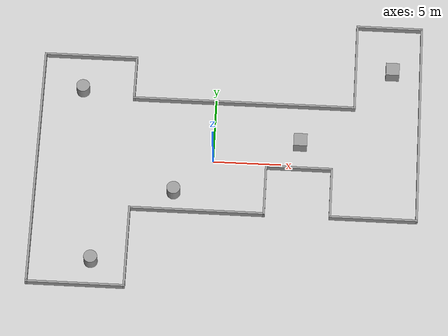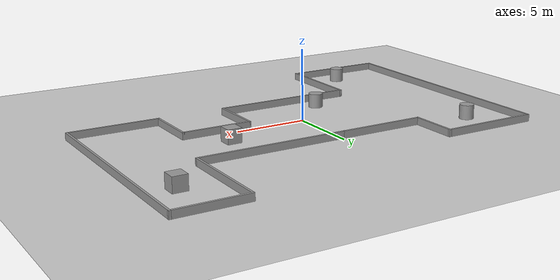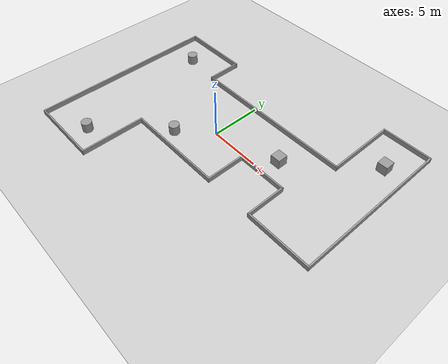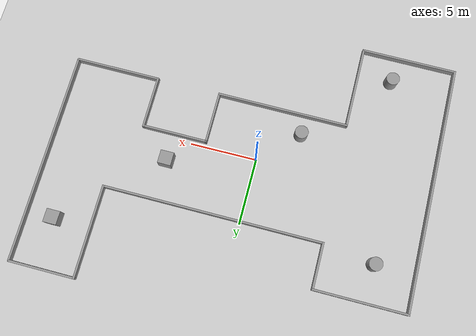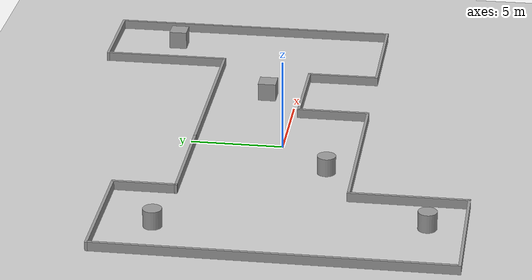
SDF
<sdf version="1.7">
 <world name="default">
  <light name="sun" type="directional">
   <pose>0 0 10 0 -0 0</pose>
   <diffuse>0.8 0.8 0.8 1</diffuse>
   <specular>0.2 0.2 0.2 1</specular>
   <attenuation>
    <range>1000</range>
    <constant>0.9</constant>
    <linear>0.01</linear>
    <quadratic>0.001</quadratic>
   </attenuation>
   <direction>-0.5 0.1 -0.9</direction>
   <spot><inner_angle>0</inner_angle><outer_angle>0</outer_angle><falloff>0</falloff></spot>
  </light>
  <model name="ground_plane">
   <static>1</static>
   <link name="link">
    <collision name="collision">
     <geometry><plane><normal>0 0 1</normal><size>100 100</size></plane></geometry>
     <surface>
      <contact><collide_bitmask>65535</collide_bitmask></contact>
      <friction><ode><mu>100</mu><mu2>50</mu2></ode></friction>
     </surface>
    </collision>
    <visual name="visual">
     <cast_shadows>0</cast_shadows>
     <geometry><plane><normal>0 0 1</normal><size>100 100</size></plane></geometry>
     <material>
      <script><uri>file://media/materials/scripts/gazebo.material</uri><name>Gazebo/Grey</name></script>
     </material>
    </visual>
   </link>
  </model>
  <gravity>0 0 -9.8</gravity>
  <magnetic_field>6e-06 2.3e-05 -4.2e-05</magnetic_field>
  <atmosphere type="adiabatic"/>
  <physics type="ode">
   <max_step_size>0.001</max_step_size>
   <real_time_factor>1</real_time_factor>
   <real_time_update_rate>1000</real_time_update_rate>
  </physics>
  <scene><ambient>0.4 0.4 0.4 1</ambient><background>0.7 0.7 0.7 1</background><shadows>1</shadows></scene>
  <audio><device>default</device></audio>
  <spherical_coordinates>
   <surface_model>EARTH_WGS84</surface_model>
   <latitude_deg>0</latitude_deg>
   <longitude_deg>0</longitude_deg>
   <elevation>0</elevation>
   <heading_deg>0</heading_deg>
  </spherical_coordinates>
  <model name="simple_world">
   <pose>1.055 0.58 0 0 -0 0</pose>
   <link name="Wall_0">
    <collision name="Wall_0_Collision">
     <geometry><box><size>10 0.15 0.5</size></box></geometry>
     <pose>0 0 0.25 0 -0 0</pose>
    </collision>
    <visual name="Wall_0_Visual">
     <pose>0 0 0.25 0 -0 0</pose>
     <geometry><box><size>10 0.15 0.5</size></box></geometry>
     <material>
      <script><uri>file://media/materials/scripts/gazebo.material</uri><name>Gazebo/Grey</name></script>
      <ambient>1 1 1 1</ambient>
     </material>
     <meta><layer>0</layer></meta>
    </visual>
    <pose>-2.05 -4.8 0 0 -0 0</pose>
   </link>
   <link name="Wall_1">
    <collision name="Wall_1_Collision">
     <geometry><box><size>4 0.15 0.5</size></box></geometry>
     <pose>0 0 0.25 0 -0 0</pose>
    </collision>
    <visual name="Wall_1_Visual">
     <pose>0 0 0.25 0 -0 0</pose>
     <geometry><box><size>4 0.15 0.5</size></box></geometry>
     <material>
      <script><uri>file://media/materials/scripts/gazebo.material</uri><name>Gazebo/Grey</name></script>
      <ambient>1 1 1 1</ambient>
     </material>
     <meta><layer>0</layer></meta>
    </visual>
    <pose>2.875 -2.875 0 0 -0 1.5708</pose>
   </link>
   <link name="Wall_10">
    <collision name="Wall_10_Collision">
     <geometry><box><size>6.25 0.15 0.5</size></box></geometry>
     <pose>0 0 0.25 0 -0 0</pose>
    </collision>
    <visual name="Wall_10_Visual">
     <pose>0 0 0.25 0 -0 0</pose>
     <geometry><box><size>6.25 0.15 0.5</size></box></geometry>
     <material>
      <script><uri>file://media/materials/scripts/gazebo.material</uri><name>Gazebo/Grey</name></script>
      <ambient>1 1 1 1</ambient>
     </material>
     <meta><layer>0</layer></meta>
    </visual>
    <pose>-4.175 4.2 0 0 -0 3.14159</pose>
   </link>
   <link name="Wall_11">
    <collision name="Wall_11_Collision">
     <geometry><box><size>3.5 0.15 0.5</size></box></geometry>
     <pose>0 0 0.25 0 -0 0</pose>
    </collision>
    <visual name="Wall_11_Visual">
     <pose>0 0 0.25 0 -0 0</pose>
     <geometry><box><size>3.5 0.15 0.5</size></box></geometry>
     <material>
      <script><uri>file://media/materials/scripts/gazebo.material</uri><name>Gazebo/Grey</name></script>
      <ambient>1 1 1 1</ambient>
     </material>
     <meta><layer>0</layer></meta>
    </visual>
    <pose>-7.225 5.875 0 0 -0 1.5708</pose>
   </link>
   <link name="Wall_12">
    <collision name="Wall_12_Collision">
     <geometry><box><size>7 0.15 0.5</size></box></geometry>
     <pose>0 0 0.25 0 -0 0</pose>
    </collision>
    <visual name="Wall_12_Visual">
     <pose>0 0 0.25 0 -0 0</pose>
     <geometry><box><size>7 0.15 0.5</size></box></geometry>
     <material>
      <script><uri>file://media/materials/scripts/gazebo.material</uri><name>Gazebo/Grey</name></script>
      <ambient>1 1 1 1</ambient>
     </material>
     <meta><layer>0</layer></meta>
    </visual>
    <pose>-10.65 7.55 0 0 -0 3.14159</pose>
   </link>
   <link name="Wall_13">
    <collision name="Wall_13_Collision">
     <geometry><box><size>18.75 0.15 0.5</size></box></geometry>
     <pose>0 0 0.25 0 -0 0</pose>
    </collision>
    <visual name="Wall_13_Visual">
     <pose>0 0 0.25 0 -0 0</pose>
     <geometry><box><size>18.75 0.15 0.5</size></box></geometry>
     <material>
      <script><uri>file://media/materials/scripts/gazebo.material</uri><name>Gazebo/Grey</name></script>
      <ambient>1 1 1 1</ambient>
     </material>
     <meta><layer>0</layer></meta>
    </visual>
    <pose>-14.075 -1.75 0 0 -0 -1.5708</pose>
   </link>
   <link name="Wall_14">
    <collision name="Wall_14_Collision">
     <geometry><box><size>7.25 0.15 0.5</size></box></geometry>
     <pose>0 0 0.25 0 -0 0</pose>
    </collision>
    <visual name="Wall_14_Visual">
     <pose>0 0 0.25 0 -0 0</pose>
     <geometry><box><size>7.25 0.15 0.5</size></box></geometry>
     <material>
      <script><uri>file://media/materials/scripts/gazebo.material</uri><name>Gazebo/Grey</name></script>
      <ambient>1 1 1 1</ambient>
     </material>
     <meta><layer>0</layer></meta>
    </visual>
    <pose>-10.525 -11.05 0 0 -0 0</pose>
   </link>
   <link name="Wall_15">
    <collision name="Wall_15_Collision">
     <geometry><box><size>6.4 0.15 0.5</size></box></geometry>
     <pose>0 0 0.25 0 -0 0</pose>
    </collision>
    <visual name="Wall_15_Visual">
     <pose>0 0 0.25 0 -0 0</pose>
     <geometry><box><size>6.4 0.15 0.5</size></box></geometry>
     <material>
      <script><uri>file://media/materials/scripts/gazebo.material</uri><name>Gazebo/Grey</name></script>
      <ambient>1 1 1 1</ambient>
     </material>
     <meta><layer>0</layer></meta>
    </visual>
    <pose>-6.975 -7.925 0 0 -0 1.5708</pose>
   </link>
   <link name="Wall_2">
    <collision name="Wall_2_Collision">
     <geometry><box><size>5 0.15 0.5</size></box></geometry>
     <pose>0 0 0.25 0 -0 0</pose>
    </collision>
    <visual name="Wall_2_Visual">
     <pose>0 0 0.25 0 -0 0</pose>
     <geometry><box><size>5 0.15 0.5</size></box></geometry>
     <material>
      <script><uri>file://media/materials/scripts/gazebo.material</uri><name>Gazebo/Grey</name></script>
      <ambient>1 1 1 1</ambient>
     </material>
     <meta><layer>0</layer></meta>
    </visual>
    <pose>5.3 -0.95 0 0 -0 0</pose>
   </link>
   <link name="Wall_3">
    <collision name="Wall_3_Collision">
     <geometry><box><size>4 0.15 0.5</size></box></geometry>
     <pose>0 0 0.25 0 -0 0</pose>
    </collision>
    <visual name="Wall_3_Visual">
     <pose>0 0 0.25 0 -0 0</pose>
     <geometry><box><size>4 0.15 0.5</size></box></geometry>
     <material>
      <script><uri>file://media/materials/scripts/gazebo.material</uri><name>Gazebo/Grey</name></script>
      <ambient>1 1 1 1</ambient>
     </material>
     <meta><layer>0</layer></meta>
    </visual>
    <pose>7.725 -2.875 0 0 -0 -1.5708</pose>
   </link>
   <link name="Wall_4">
    <collision name="Wall_4_Collision">
     <geometry><box><size>6.5 0.15 0.5</size></box></geometry>
     <pose>0 0 0.25 0 -0 0</pose>
    </collision>
    <visual name="Wall_4_Visual">
     <pose>0 0 0.25 0 -0 0</pose>
     <geometry><box><size>6.5 0.15 0.5</size></box></geometry>
     <material>
      <script><uri>file://media/materials/scripts/gazebo.material</uri><name>Gazebo/Grey</name></script>
      <ambient>1 1 1 1</ambient>
     </material>
     <meta><layer>0</layer></meta>
    </visual>
    <pose>10.9 -4.8 0 0 -0 0</pose>
   </link>
   <link name="Wall_5">
    <collision name="Wall_5_Collision">
     <geometry><box><size>16 0.15 0.5</size></box></geometry>
     <pose>0 0 0.25 0 -0 0</pose>
    </collision>
    <visual name="Wall_5_Visual">
     <pose>0 0 0.25 0 -0 0</pose>
     <geometry><box><size>16 0.15 0.5</size></box></geometry>
     <material>
      <script><uri>file://media/materials/scripts/gazebo.material</uri><name>Gazebo/Grey</name></script>
      <ambient>1 1 1 1</ambient>
     </material>
     <meta><layer>0</layer></meta>
    </visual>
    <pose>14.075 3.125 0 0 -0 1.5708</pose>
   </link>
   <link name="Wall_7">
    <collision name="Wall_7_Collision">
     <geometry><box><size>5 0.15 0.5</size></box></geometry>
     <pose>0 0 0.25 0 -0 0</pose>
    </collision>
    <visual name="Wall_7_Visual">
     <pose>0 0 0.25 0 -0 0</pose>
     <geometry><box><size>5 0.15 0.5</size></box></geometry>
     <material>
      <script><uri>file://media/materials/scripts/gazebo.material</uri><name>Gazebo/Grey</name></script>
      <ambient>1 1 1 1</ambient>
     </material>
     <meta><layer>0</layer></meta>
    </visual>
    <pose>11.65 11.05 0 0 -0 3.14159</pose>
   </link>
   <link name="Wall_8">
    <collision name="Wall_8_Collision">
     <geometry><box><size>7 0.15 0.5</size></box></geometry>
     <pose>0 0 0.25 0 -0 0</pose>
    </collision>
    <visual name="Wall_8_Visual">
     <pose>0 0 0.25 0 -0 0</pose>
     <geometry><box><size>7 0.15 0.5</size></box></geometry>
     <material>
      <script><uri>file://media/materials/scripts/gazebo.material</uri><name>Gazebo/Grey</name></script>
      <ambient>1 1 1 1</ambient>
     </material>
     <meta><layer>0</layer></meta>
    </visual>
    <pose>9.225 7.625 0 0 -0 -1.5708</pose>
   </link>
   <link name="Wall_9">
    <collision name="Wall_9_Collision">
     <geometry><box><size>10.5 0.15 0.5</size></box></geometry>
     <pose>0 0 0.25 0 -0 0</pose>
    </collision>
    <visual name="Wall_9_Visual">
     <pose>0 0 0.25 0 -0 0</pose>
     <geometry><box><size>10.5 0.15 0.5</size></box></geometry>
     <material>
      <script><uri>file://media/materials/scripts/gazebo.material</uri><name>Gazebo/Grey</name></script>
      <ambient>1 1 1 1</ambient>
     </material>
     <meta><layer>0</layer></meta>
    </visual>
    <pose>4.05 4.2 0 0 -0 3.14159</pose>
   </link>
   <static>1</static>
  </model>
  <model name="unit_box">
   <pose>6.37075 1.69173 0.499995 0 1e-05 0</pose>
   <link name="link">
    <inertial>
     <mass>1</mass>
     <inertia>
      <ixx>0.166667</ixx>
      <ixy>0</ixy>
      <ixz>0</ixz>
      <iyy>0.166667</iyy>
      <iyz>0</iyz>
      <izz>0.166667</izz>
     </inertia>
    </inertial>
    <collision name="collision"><geometry><box><size>1 1 1</size></box></geometry></collision>
    <visual name="visual">
     <geometry><box><size>1 1 1</size></box></geometry>
     <material>
      <script><name>Gazebo/Grey</name><uri>file://media/materials/scripts/gazebo.material</uri></script>
     </material>
    </visual>
   </link>
  </model>
  <model name="unit_box_0">
   <pose>13.0149 7.89844 0.499995 -1e-05 -0 -0</pose>
   <link name="link">
    <inertial>
     <mass>1</mass>
     <inertia>
      <ixx>0.166667</ixx>
      <ixy>0</ixy>
      <ixz>0</ixz>
      <iyy>0.166667</iyy>
      <iyz>0</iyz>
      <izz>0.166667</izz>
     </inertia>
    </inertial>
    <collision name="collision"><geometry><box><size>1 1 1</size></box></geometry></collision>
    <visual name="visual">
     <geometry><box><size>1 1 1</size></box></geometry>
     <material>
      <script><name>Gazebo/Grey</name><uri>file://media/materials/scripts/gazebo.material</uri></script>
     </material>
    </visual>
   </link>
  </model>
  <model name="unit_cylinder">
   <pose>-9.99841 5.32862 0.499997 3e-06 4e-06 -0</pose>
   <link name="link">
    <inertial>
     <mass>1</mass>
     <inertia><ixx>0.145833</ixx><ixy>0</ixy><ixz>0</ixz><iyy>0.145833</iyy><iyz>0</iyz><izz>0.125</izz></inertia>
    </inertial>
    <collision name="collision">
     <geometry><cylinder><radius>0.5</radius><length>1</length></cylinder></geometry>
    </collision>
    <visual name="visual">
     <geometry><cylinder><radius>0.5</radius><length>1</length></cylinder></geometry>
     <material>
      <script><name>Gazebo/Grey</name><uri>file://media/materials/scripts/gazebo.material</uri></script>
     </material>
    </visual>
   </link>
  </model>
  <model name="unit_cylinder_0">
   <pose>-2.77202 -2.70592 0.499993 -3e-06 -4e-06 -0</pose>
   <link name="link">
    <inertial>
     <mass>1</mass>
     <inertia><ixx>0.145833</ixx><ixy>0</ixy><ixz>0</ixz><iyy>0.145833</iyy><iyz>0</iyz><izz>0.125</izz></inertia>
    </inertial>
    <collision name="collision">
     <geometry><cylinder><radius>0.5</radius><length>1</length></cylinder></geometry>
    </collision>
    <visual name="visual">
     <geometry><cylinder><radius>0.5</radius><length>1</length></cylinder></geometry>
     <material>
      <script><name>Gazebo/Grey</name><uri>file://media/materials/scripts/gazebo.material</uri></script>
     </material>
    </visual>
   </link>
  </model>
  <model name="unit_cylinder_1">
   <pose>-8.46123 -8.51795 0.499997 3e-06 4e-06 -0</pose>
   <link name="link">
    <inertial>
     <mass>1</mass>
     <inertia><ixx>0.145833</ixx><ixy>0</ixy><ixz>0</ixz><iyy>0.145833</iyy><iyz>0</iyz><izz>0.125</izz></inertia>
    </inertial>
    <collision name="collision">
     <geometry><cylinder><radius>0.5</radius><length>1</length></cylinder></geometry>
    </collision>
    <visual name="visual">
     <geometry><cylinder><radius>0.5</radius><length>1</length></cylinder></geometry>
     <material>
      <script><name>Gazebo/Grey</name><uri>file://media/materials/scripts/gazebo.material</uri></script>
     </material>
    </visual>
   </link>
  </model>
 </world>
</sdf>
